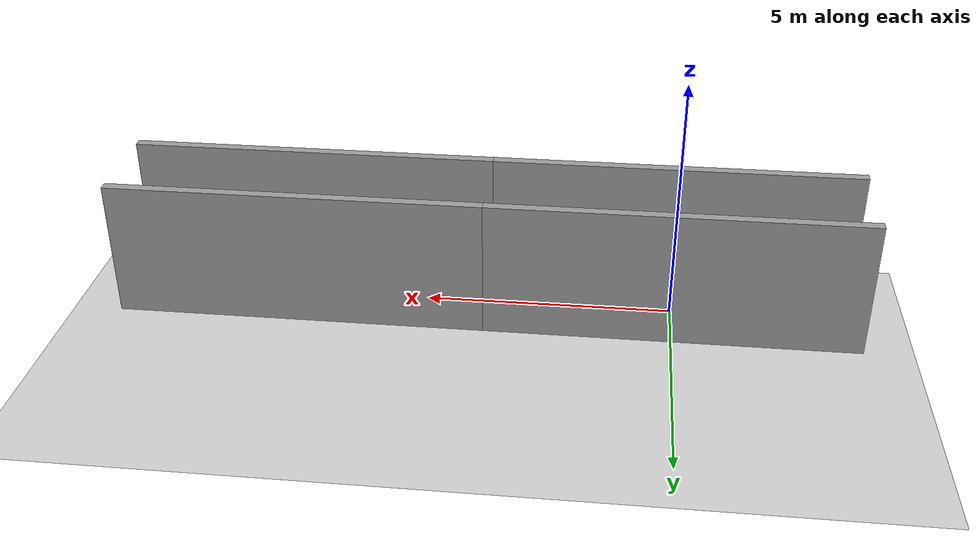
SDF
<sdf version="1.6">
 <world name="default">
  <light name="sun" type="directional">
   <pose>0 0 10 0 -0 0</pose>
   <diffuse>0.8 0.8 0.8 1</diffuse>
   <specular>0.2 0.2 0.2 1</specular>
   <attenuation>
    <range>1000</range>
    <constant>0.9</constant>
    <linear>0.01</linear>
    <quadratic>0.001</quadratic>
   </attenuation>
   <direction>-0.5 0.1 -0.9</direction>
  </light>
  <model name="ground_plane">
   <pose>0 0 1e-06 0 -0 0</pose>
   <static>1</static>
   <link name="link">
    <collision name="collision">
     <geometry><plane><normal>0 0 1</normal><size>100 100</size></plane></geometry>
     <surface><friction><ode><mu>100</mu><mu2>50</mu2></ode></friction></surface>
    </collision>
    <visual name="visual">
     <cast_shadows>0</cast_shadows>
     <geometry><plane><normal>0 0 1</normal><size>100 100</size></plane></geometry>
     <material>
      <script><uri>file://media/materials/scripts/gazebo.material</uri><name>Gazebo/Grey</name></script>
     </material>
    </visual>
   </link>
  </model>
  <gravity>0 0 -9.8</gravity>
  <magnetic_field>6e-06 2.3e-05 -4.2e-05</magnetic_field>
  <atmosphere type="adiabatic"/>
  <physics name="default_physics" default="0" type="ode">
   <max_step_size>0.001</max_step_size>
   <real_time_factor>1</real_time_factor>
   <real_time_update_rate>1000</real_time_update_rate>
  </physics>
  <scene><ambient>0.4 0.4 0.4 1</ambient><background>0.7 0.7 0.7 1</background><shadows>1</shadows></scene>
  <audio><device>default</device></audio>
  <spherical_coordinates>
   <surface_model>EARTH_WGS84</surface_model>
   <latitude_deg>0</latitude_deg>
   <longitude_deg>0</longitude_deg>
   <elevation>0</elevation>
   <heading_deg>0</heading_deg>
  </spherical_coordinates>
  <model name="grey_wall">
   <static>1</static>
   <link name="link">
    <pose>0 0 1.4 0 -0 0</pose>
    <collision name="collision"><geometry><box><size>7.5 0.2 2.8</size></box></geometry></collision>
    <visual name="visual">
     <cast_shadows>0</cast_shadows>
     <geometry><box><size>7.5 0.2 2.8</size></box></geometry>
     <material>
      <script>
       <uri>model://grey_wall/materials/scripts</uri>
       <uri>model://grey_wall/materials/textures</uri>
       <name>vrc/grey_wall</name>
      </script>
     </material>
    </visual>
   </link>
   <pose>0 -1 0 0 -0 0</pose>
  </model>
  <model name="grey_wall_clone">
   <static>1</static>
   <link name="link">
    <pose>0 0 1.4 0 -0 0</pose>
    <collision name="collision"><geometry><box><size>7.5 0.2 2.8</size></box></geometry></collision>
    <visual name="visual">
     <cast_shadows>0</cast_shadows>
     <geometry><box><size>7.5 0.2 2.8</size></box></geometry>
     <material>
      <script>
       <uri>model://grey_wall/materials/scripts</uri>
       <uri>model://grey_wall/materials/textures</uri>
       <name>vrc/grey_wall</name>
      </script>
     </material>
    </visual>
   </link>
   <pose>0 1 0 0 -0 0</pose>
  </model>
  <model name="grey_wall_clone_0">
   <static>1</static>
   <link name="link">
    <pose>0 0 1.4 0 -0 0</pose>
    <collision name="collision"><geometry><box><size>7.5 0.2 2.8</size></box></geometry></collision>
    <visual name="visual">
     <cast_shadows>0</cast_shadows>
     <geometry><box><size>7.5 0.2 2.8</size></box></geometry>
     <material>
      <script>
       <uri>model://grey_wall/materials/scripts</uri>
       <uri>model://grey_wall/materials/textures</uri>
       <name>vrc/grey_wall</name>
      </script>
     </material>
    </visual>
   </link>
   <pose>7.5 -1 0 0 -0 0</pose>
  </model>
  <model name="grey_wall_clone_clone">
   <static>1</static>
   <link name="link">
    <pose>0 0 1.4 0 -0 0</pose>
    <collision name="collision"><geometry><box><size>7.5 0.2 2.8</size></box></geometry></collision>
    <visual name="visual">
     <cast_shadows>0</cast_shadows>
     <geometry><box><size>7.5 0.2 2.8</size></box></geometry>
     <material>
      <script>
       <uri>model://grey_wall/materials/scripts</uri>
       <uri>model://grey_wall/materials/textures</uri>
       <name>vrc/grey_wall</name>
      </script>
     </material>
    </visual>
   </link>
   <pose>7.5 1 0 0 -0 0</pose>
  </model>
  <model name="unit_box">
   <pose>2 -2e-05 0.409729 -2e-06 -2e-06 -5.9e-05</pose>
   <link name="link">
    <inertial>
     <mass>1</mass>
     <inertia>
      <ixx>0.166667</ixx>
      <ixy>0</ixy>
      <ixz>0</ixz>
      <iyy>0.166667</iyy>
      <iyz>0</iyz>
      <izz>0.166667</izz>
     </inertia>
    </inertial>
    <collision name="collision">
     <geometry><box><size>0.347382 0.261448 0.819458</size></box></geometry>
    </collision>
    <visual name="visual">
     <geometry><box><size>0.347382 0.261448 0.819458</size></box></geometry>
     <material>
      <script><name>Gazebo/Grey</name><uri>file://media/materials/scripts/gazebo.material</uri></script>
     </material>
    </visual>
   </link>
  </model>
 </world>
</sdf>
